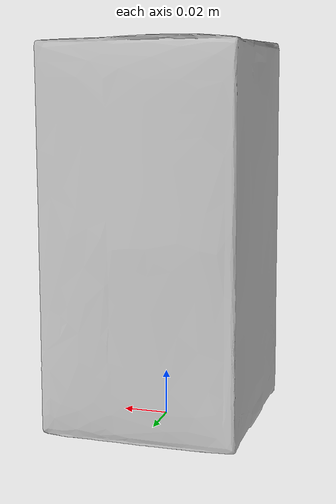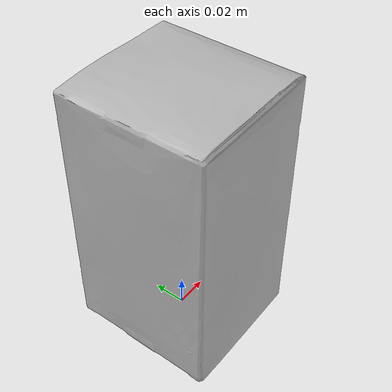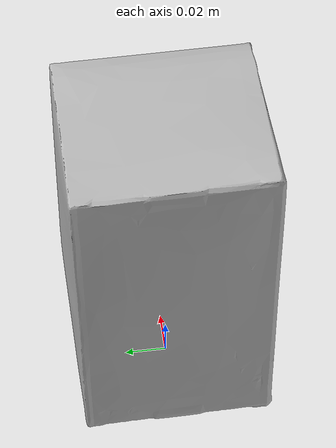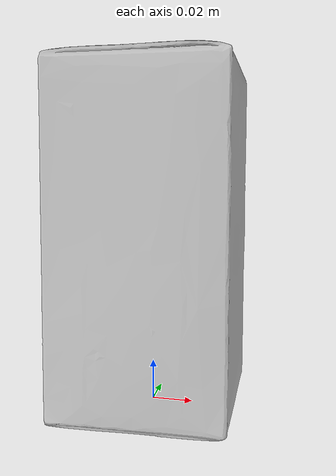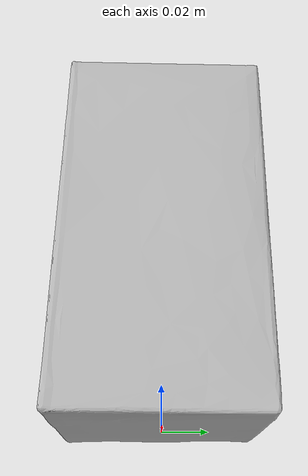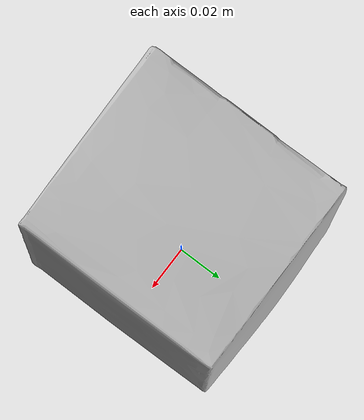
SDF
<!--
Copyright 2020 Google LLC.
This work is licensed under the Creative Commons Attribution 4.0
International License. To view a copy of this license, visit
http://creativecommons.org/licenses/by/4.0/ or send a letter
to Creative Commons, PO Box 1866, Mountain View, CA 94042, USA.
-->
<?xml version="1.0" ?>
<sdf version="1.6">
  <model name="Arm_Hammer_Diaper_Pail_Refills_12_Pack_MFWkmoweejt">
    <link name="link_0">
      <visual name="visual">
        <geometry>
          <mesh>
            <uri>meshes/model.obj</uri>
          </mesh>
        </geometry>
      </visual>
      <collision name="collision_0">
        <geometry>
          <mesh>
            <uri>meshes/model.obj</uri>
          </mesh>
        </geometry>
      </collision>
    </link>
  </model>
</sdf>
